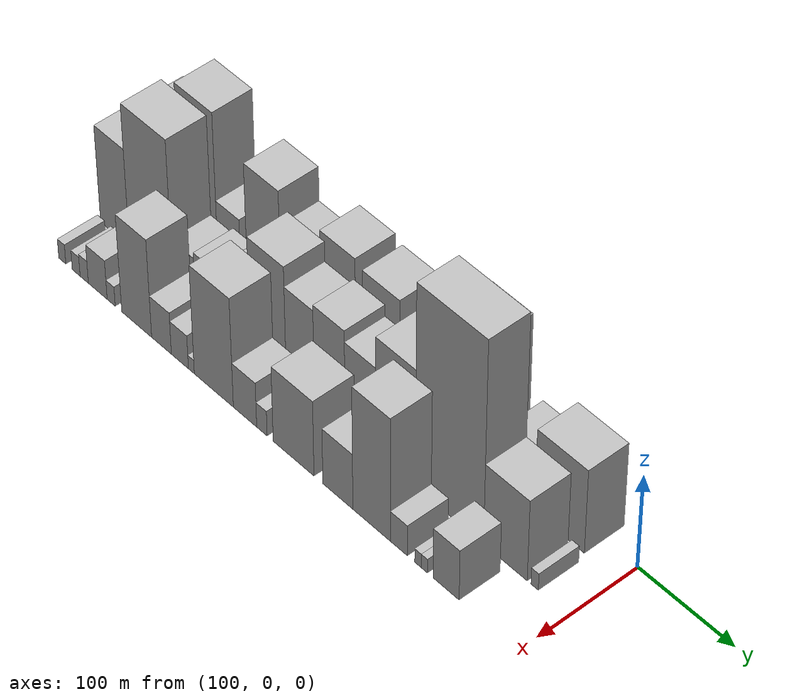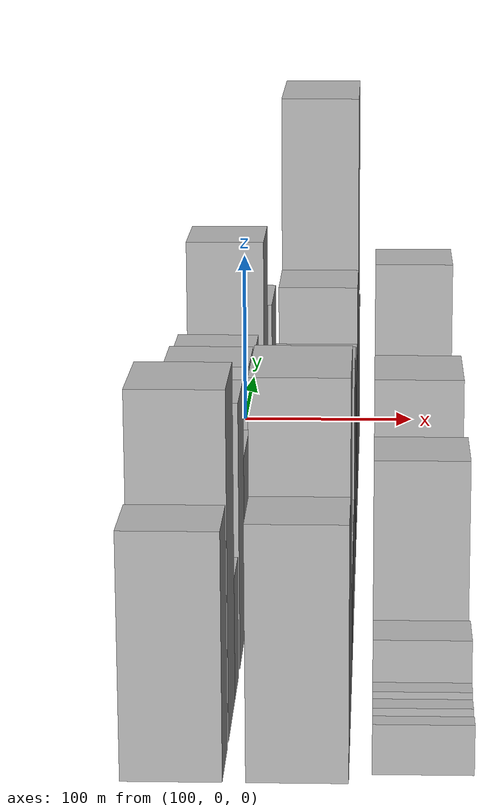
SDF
<sdf version="1.6">
 <world name="default">
  <model name="building_1">
   <static>1</static>
   <pose>100.0000 -519.1767 0 0.000000 0.000000 0.000000</pose>
   <link name="link">
    <pose>0 0 51.00 0 0 0</pose>
    <collision name="collision"><geometry><box><size>40.0000 33.6465 102.0000</size></box></geometry></collision>
    <visual name="visual">
     <cast_shadows>0</cast_shadows>
     <geometry><box><size>40.0000 33.6465 102.0000</size></box></geometry>
     <material>
      <script>
       <uri>model://HANNAS_wall/materials/scripts</uri>
       <uri>model://HANNAS_wall/materials/textures</uri>
       <name>vrc/HANNAS_wall</name>
      </script>
     </material>
    </visual>
   </link>
  </model>
  <model name="building_2">
   <static>1</static>
   <pose>100.0000 -473.9205 0 0.000000 0.000000 0.000000</pose>
   <link name="link">
    <pose>0 0 73.50 0 0 0</pose>
    <collision name="collision"><geometry><box><size>40.0000 44.8659 147.0000</size></box></geometry></collision>
    <visual name="visual">
     <cast_shadows>0</cast_shadows>
     <geometry><box><size>40.0000 44.8659 147.0000</size></box></geometry>
     <material>
      <script>
       <uri>model://HANNAS_wall/materials/scripts</uri>
       <uri>model://HANNAS_wall/materials/textures</uri>
       <name>vrc/HANNAS_wall</name>
      </script>
     </material>
    </visual>
   </link>
  </model>
  <model name="building_3">
   <static>1</static>
   <pose>100.0000 -437.5152 0 0.000000 0.000000 0.000000</pose>
   <link name="link">
    <pose>0 0 27.00 0 0 0</pose>
    <collision name="collision"><geometry><box><size>40.0000 27.9448 54.0000</size></box></geometry></collision>
    <visual name="visual">
     <cast_shadows>0</cast_shadows>
     <geometry><box><size>40.0000 27.9448 54.0000</size></box></geometry>
     <material>
      <script>
       <uri>model://HANNAS_wall/materials/scripts</uri>
       <uri>model://HANNAS_wall/materials/textures</uri>
       <name>vrc/HANNAS_wall</name>
      </script>
     </material>
    </visual>
   </link>
  </model>
  <model name="building_4">
   <static>1</static>
   <pose>100.0000 -395.3650 0 0.000000 0.000000 0.000000</pose>
   <link name="link">
    <pose>0 0 60.00 0 0 0</pose>
    <collision name="collision"><geometry><box><size>40.0000 40.3557 120.0000</size></box></geometry></collision>
    <visual name="visual">
     <cast_shadows>0</cast_shadows>
     <geometry><box><size>40.0000 40.3557 120.0000</size></box></geometry>
     <material>
      <script>
       <uri>model://HANNAS_wall/materials/scripts</uri>
       <uri>model://HANNAS_wall/materials/textures</uri>
       <name>vrc/HANNAS_wall</name>
      </script>
     </material>
    </visual>
   </link>
  </model>
  <model name="building_5">
   <static>1</static>
   <pose>100.0000 -351.5707 0 0.000000 0.000000 0.000000</pose>
   <link name="link">
    <pose>0 0 42.00 0 0 0</pose>
    <collision name="collision"><geometry><box><size>40.0000 47.2327 84.0000</size></box></geometry></collision>
    <visual name="visual">
     <cast_shadows>0</cast_shadows>
     <geometry><box><size>40.0000 47.2327 84.0000</size></box></geometry>
     <material>
      <script>
       <uri>model://HANNAS_wall/materials/scripts</uri>
       <uri>model://HANNAS_wall/materials/textures</uri>
       <name>vrc/HANNAS_wall</name>
      </script>
     </material>
    </visual>
   </link>
  </model>
  <model name="building_6">
   <static>1</static>
   <pose>100.0000 -307.8718 0 0.000000 0.000000 0.000000</pose>
   <link name="link">
    <pose>0 0 57.00 0 0 0</pose>
    <collision name="collision"><geometry><box><size>40.0000 40.1651 114.0000</size></box></geometry></collision>
    <visual name="visual">
     <cast_shadows>0</cast_shadows>
     <geometry><box><size>40.0000 40.1651 114.0000</size></box></geometry>
     <material>
      <script>
       <uri>model://HANNAS_wall/materials/scripts</uri>
       <uri>model://HANNAS_wall/materials/textures</uri>
       <name>vrc/HANNAS_wall</name>
      </script>
     </material>
    </visual>
   </link>
  </model>
  <model name="building_7">
   <static>1</static>
   <pose>100.0000 -258.7909 0 0.000000 0.000000 0.000000</pose>
   <link name="link">
    <pose>0 0 54.00 0 0 0</pose>
    <collision name="collision"><geometry><box><size>40.0000 41.9967 108.0000</size></box></geometry></collision>
    <visual name="visual">
     <cast_shadows>0</cast_shadows>
     <geometry><box><size>40.0000 41.9967 108.0000</size></box></geometry>
     <material>
      <script>
       <uri>model://HANNAS_wall/materials/scripts</uri>
       <uri>model://HANNAS_wall/materials/textures</uri>
       <name>vrc/HANNAS_wall</name>
      </script>
     </material>
    </visual>
   </link>
  </model>
  <model name="building_8">
   <static>1</static>
   <pose>100.0000 -221.3957 0 0.000000 0.000000 0.000000</pose>
   <link name="link">
    <pose>0 0 22.50 0 0 0</pose>
    <collision name="collision"><geometry><box><size>40.0000 26.7937 45.0000</size></box></geometry></collision>
    <visual name="visual">
     <cast_shadows>0</cast_shadows>
     <geometry><box><size>40.0000 26.7937 45.0000</size></box></geometry>
     <material>
      <script>
       <uri>model://HANNAS_wall/materials/scripts</uri>
       <uri>model://HANNAS_wall/materials/textures</uri>
       <name>vrc/HANNAS_wall</name>
      </script>
     </material>
    </visual>
   </link>
  </model>
  <model name="building_9">
   <static>1</static>
   <pose>100.0000 -204.3050 0 0.000000 0.000000 0.000000</pose>
   <link name="link">
    <pose>0 0 9.00 0 0 0</pose>
    <collision name="collision"><geometry><box><size>40.0000 7.3877 18.0000</size></box></geometry></collision>
    <visual name="visual">
     <cast_shadows>0</cast_shadows>
     <geometry><box><size>40.0000 7.3877 18.0000</size></box></geometry>
     <material>
      <script>
       <uri>model://HANNAS_wall/materials/scripts</uri>
       <uri>model://HANNAS_wall/materials/textures</uri>
       <name>vrc/HANNAS_wall</name>
      </script>
     </material>
    </visual>
   </link>
  </model>
  <model name="building_10">
   <static>1</static>
   <pose>100.0000 -191.5914 0 0.000000 0.000000 0.000000</pose>
   <link name="link">
    <pose>0 0 12.00 0 0 0</pose>
    <collision name="collision"><geometry><box><size>40.0000 10.0394 24.0000</size></box></geometry></collision>
    <visual name="visual">
     <cast_shadows>0</cast_shadows>
     <geometry><box><size>40.0000 10.0394 24.0000</size></box></geometry>
     <material>
      <script>
       <uri>model://HANNAS_wall/materials/scripts</uri>
       <uri>model://HANNAS_wall/materials/textures</uri>
       <name>vrc/HANNAS_wall</name>
      </script>
     </material>
    </visual>
   </link>
  </model>
  <model name="building_11">
   <static>1</static>
   <pose>100.0000 -160.2970 0 0.000000 0.000000 0.000000</pose>
   <link name="link">
    <pose>0 0 72.00 0 0 0</pose>
    <collision name="collision"><geometry><box><size>40.0000 44.5494 144.0000</size></box></geometry></collision>
    <visual name="visual">
     <cast_shadows>0</cast_shadows>
     <geometry><box><size>40.0000 44.5494 144.0000</size></box></geometry>
     <material>
      <script>
       <uri>model://HANNAS_wall/materials/scripts</uri>
       <uri>model://HANNAS_wall/materials/textures</uri>
       <name>vrc/HANNAS_wall</name>
      </script>
     </material>
    </visual>
   </link>
  </model>
  <model name="building_12">
   <static>1</static>
   <pose>100.0000 -128.2842 0 0.000000 0.000000 0.000000</pose>
   <link name="link">
    <pose>0 0 9.00 0 0 0</pose>
    <collision name="collision"><geometry><box><size>40.0000 7.4762 18.0000</size></box></geometry></collision>
    <visual name="visual">
     <cast_shadows>0</cast_shadows>
     <geometry><box><size>40.0000 7.4762 18.0000</size></box></geometry>
     <material>
      <script>
       <uri>model://HANNAS_wall/materials/scripts</uri>
       <uri>model://HANNAS_wall/materials/textures</uri>
       <name>vrc/HANNAS_wall</name>
      </script>
     </material>
    </visual>
   </link>
  </model>
  <model name="building_13">
   <static>1</static>
   <pose>100.0000 -106.5795 0 0.000000 0.000000 0.000000</pose>
   <link name="link">
    <pose>0 0 31.50 0 0 0</pose>
    <collision name="collision"><geometry><box><size>40.0000 35.9331 63.0000</size></box></geometry></collision>
    <visual name="visual">
     <cast_shadows>0</cast_shadows>
     <geometry><box><size>40.0000 35.9331 63.0000</size></box></geometry>
     <material>
      <script>
       <uri>model://HANNAS_wall/materials/scripts</uri>
       <uri>model://HANNAS_wall/materials/textures</uri>
       <name>vrc/HANNAS_wall</name>
      </script>
     </material>
    </visual>
   </link>
  </model>
  <model name="building_14">
   <static>1</static>
   <pose>100.0000 -61.9898 0 0.000000 0.000000 0.000000</pose>
   <link name="link">
    <pose>0 0 45.00 0 0 0</pose>
    <collision name="collision"><geometry><box><size>40.0000 53.2462 90.0000</size></box></geometry></collision>
    <visual name="visual">
     <cast_shadows>0</cast_shadows>
     <geometry><box><size>40.0000 53.2462 90.0000</size></box></geometry>
     <material>
      <script>
       <uri>model://HANNAS_wall/materials/scripts</uri>
       <uri>model://HANNAS_wall/materials/textures</uri>
       <name>vrc/HANNAS_wall</name>
      </script>
     </material>
    </visual>
   </link>
  </model>
  <model name="building_29">
   <static>1</static>
   <pose>149.0000 -518.1014 0 0.000000 0.000000 0.000000</pose>
   <link name="link">
    <pose>0 0 52.50 0 0 0</pose>
    <collision name="collision"><geometry><box><size>40.0000 35.7971 105.0000</size></box></geometry></collision>
    <visual name="visual">
     <cast_shadows>0</cast_shadows>
     <geometry><box><size>40.0000 35.7971 105.0000</size></box></geometry>
     <material>
      <script>
       <uri>model://HANNAS_wall/materials/scripts</uri>
       <uri>model://HANNAS_wall/materials/textures</uri>
       <name>vrc/HANNAS_wall</name>
      </script>
     </material>
    </visual>
   </link>
  </model>
  <model name="building_30">
   <static>1</static>
   <pose>149.0000 -473.4842 0 0.000000 0.000000 0.000000</pose>
   <link name="link">
    <pose>0 0 76.50 0 0 0</pose>
    <collision name="collision"><geometry><box><size>40.0000 53.4373 153.0000</size></box></geometry></collision>
    <visual name="visual">
     <cast_shadows>0</cast_shadows>
     <geometry><box><size>40.0000 53.4373 153.0000</size></box></geometry>
     <material>
      <script>
       <uri>model://HANNAS_wall/materials/scripts</uri>
       <uri>model://HANNAS_wall/materials/textures</uri>
       <name>vrc/HANNAS_wall</name>
      </script>
     </material>
    </visual>
   </link>
  </model>
  <model name="building_31">
   <static>1</static>
   <pose>149.0000 -433.1350 0 0.000000 0.000000 0.000000</pose>
   <link name="link">
    <pose>0 0 24.00 0 0 0</pose>
    <collision name="collision"><geometry><box><size>40.0000 27.2611 48.0000</size></box></geometry></collision>
    <visual name="visual">
     <cast_shadows>0</cast_shadows>
     <geometry><box><size>40.0000 27.2611 48.0000</size></box></geometry>
     <material>
      <script>
       <uri>model://HANNAS_wall/materials/scripts</uri>
       <uri>model://HANNAS_wall/materials/textures</uri>
       <name>vrc/HANNAS_wall</name>
      </script>
     </material>
    </visual>
   </link>
  </model>
  <model name="building_32">
   <static>1</static>
   <pose>149.0000 -405.4768 0 0.000000 0.000000 0.000000</pose>
   <link name="link">
    <pose>0 0 27.00 0 0 0</pose>
    <collision name="collision"><geometry><box><size>40.0000 28.0553 54.0000</size></box></geometry></collision>
    <visual name="visual">
     <cast_shadows>0</cast_shadows>
     <geometry><box><size>40.0000 28.0553 54.0000</size></box></geometry>
     <material>
      <script>
       <uri>model://HANNAS_wall/materials/scripts</uri>
       <uri>model://HANNAS_wall/materials/textures</uri>
       <name>vrc/HANNAS_wall</name>
      </script>
     </material>
    </visual>
   </link>
  </model>
  <model name="building_33">
   <static>1</static>
   <pose>149.0000 -375.0897 0 0.000000 0.000000 0.000000</pose>
   <link name="link">
    <pose>0 0 30.00 0 0 0</pose>
    <collision name="collision"><geometry><box><size>40.0000 32.7190 60.0000</size></box></geometry></collision>
    <visual name="visual">
     <cast_shadows>0</cast_shadows>
     <geometry><box><size>40.0000 32.7190 60.0000</size></box></geometry>
     <material>
      <script>
       <uri>model://HANNAS_wall/materials/scripts</uri>
       <uri>model://HANNAS_wall/materials/textures</uri>
       <name>vrc/HANNAS_wall</name>
      </script>
     </material>
    </visual>
   </link>
  </model>
  <model name="building_34">
   <static>1</static>
   <pose>149.0000 -332.7473 0 0.000000 0.000000 0.000000</pose>
   <link name="link">
    <pose>0 0 60.00 0 0 0</pose>
    <collision name="collision"><geometry><box><size>40.0000 41.9658 120.0000</size></box></geometry></collision>
    <visual name="visual">
     <cast_shadows>0</cast_shadows>
     <geometry><box><size>40.0000 41.9658 120.0000</size></box></geometry>
     <material>
      <script>
       <uri>model://HANNAS_wall/materials/scripts</uri>
       <uri>model://HANNAS_wall/materials/textures</uri>
       <name>vrc/HANNAS_wall</name>
      </script>
     </material>
    </visual>
   </link>
  </model>
  <model name="building_35">
   <static>1</static>
   <pose>149.0000 -295.4052 0 0.000000 0.000000 0.000000</pose>
   <link name="link">
    <pose>0 0 49.50 0 0 0</pose>
    <collision name="collision"><geometry><box><size>40.0000 32.7185 99.0000</size></box></geometry></collision>
    <visual name="visual">
     <cast_shadows>0</cast_shadows>
     <geometry><box><size>40.0000 32.7185 99.0000</size></box></geometry>
     <material>
      <script>
       <uri>model://HANNAS_wall/materials/scripts</uri>
       <uri>model://HANNAS_wall/materials/textures</uri>
       <name>vrc/HANNAS_wall</name>
      </script>
     </material>
    </visual>
   </link>
  </model>
  <model name="building_36">
   <static>1</static>
   <pose>149.0000 -261.4645 0 0.000000 0.000000 0.000000</pose>
   <link name="link">
    <pose>0 0 52.50 0 0 0</pose>
    <collision name="collision"><geometry><box><size>40.0000 35.1628 105.0000</size></box></geometry></collision>
    <visual name="visual">
     <cast_shadows>0</cast_shadows>
     <geometry><box><size>40.0000 35.1628 105.0000</size></box></geometry>
     <material>
      <script>
       <uri>model://HANNAS_wall/materials/scripts</uri>
       <uri>model://HANNAS_wall/materials/textures</uri>
       <name>vrc/HANNAS_wall</name>
      </script>
     </material>
    </visual>
   </link>
  </model>
  <model name="building_37">
   <static>1</static>
   <pose>149.0000 -226.4572 0 0.000000 0.000000 0.000000</pose>
   <link name="link">
    <pose>0 0 46.50 0 0 0</pose>
    <collision name="collision"><geometry><box><size>40.0000 34.8519 93.0000</size></box></geometry></collision>
    <visual name="visual">
     <cast_shadows>0</cast_shadows>
     <geometry><box><size>40.0000 34.8519 93.0000</size></box></geometry>
     <material>
      <script>
       <uri>model://HANNAS_wall/materials/scripts</uri>
       <uri>model://HANNAS_wall/materials/textures</uri>
       <name>vrc/HANNAS_wall</name>
      </script>
     </material>
    </visual>
   </link>
  </model>
  <model name="building_38">
   <static>1</static>
   <pose>149.0000 -187.0249 0 0.000000 0.000000 0.000000</pose>
   <link name="link">
    <pose>0 0 63.00 0 0 0</pose>
    <collision name="collision"><geometry><box><size>40.0000 44.0127 126.0000</size></box></geometry></collision>
    <visual name="visual">
     <cast_shadows>0</cast_shadows>
     <geometry><box><size>40.0000 44.0127 126.0000</size></box></geometry>
     <material>
      <script>
       <uri>model://HANNAS_wall/materials/scripts</uri>
       <uri>model://HANNAS_wall/materials/textures</uri>
       <name>vrc/HANNAS_wall</name>
      </script>
     </material>
    </visual>
   </link>
  </model>
  <model name="building_39">
   <static>1</static>
   <pose>149.0000 -127.7363 0 0.000000 0.000000 0.000000</pose>
   <link name="link">
    <pose>0 0 108.00 0 0 0</pose>
    <collision name="collision"><geometry><box><size>40.0000 74.5646 216.0000</size></box></geometry></collision>
    <visual name="visual">
     <cast_shadows>0</cast_shadows>
     <geometry><box><size>40.0000 74.5646 216.0000</size></box></geometry>
     <material>
      <script>
       <uri>model://HANNAS_wall/materials/scripts</uri>
       <uri>model://HANNAS_wall/materials/textures</uri>
       <name>vrc/HANNAS_wall</name>
      </script>
     </material>
    </visual>
   </link>
  </model>
  <model name="building_40">
   <static>1</static>
   <pose>149.0000 -67.0491 0 0.000000 0.000000 0.000000</pose>
   <link name="link">
    <pose>0 0 43.50 0 0 0</pose>
    <collision name="collision"><geometry><box><size>40.0000 46.8098 87.0000</size></box></geometry></collision>
    <visual name="visual">
     <cast_shadows>0</cast_shadows>
     <geometry><box><size>40.0000 46.8098 87.0000</size></box></geometry>
     <material>
      <script>
       <uri>model://HANNAS_wall/materials/scripts</uri>
       <uri>model://HANNAS_wall/materials/textures</uri>
       <name>vrc/HANNAS_wall</name>
      </script>
     </material>
    </visual>
   </link>
  </model>
  <model name="building_41">
   <static>1</static>
   <pose>149.0000 -35.7485 0 0.000000 0.000000 0.000000</pose>
   <link name="link">
    <pose>0 0 9.00 0 0 0</pose>
    <collision name="collision"><geometry><box><size>40.0000 7.7915 18.0000</size></box></geometry></collision>
    <visual name="visual">
     <cast_shadows>0</cast_shadows>
     <geometry><box><size>40.0000 7.7915 18.0000</size></box></geometry>
     <material>
      <script>
       <uri>model://HANNAS_wall/materials/scripts</uri>
       <uri>model://HANNAS_wall/materials/textures</uri>
       <name>vrc/HANNAS_wall</name>
      </script>
     </material>
    </visual>
   </link>
  </model>
  <model name="building_58">
   <static>1</static>
   <pose>198.0000 -522.6313 0 0.000000 0.000000 0.000000</pose>
   <link name="link">
    <pose>0 0 10.50 0 0 0</pose>
    <collision name="collision"><geometry><box><size>40.0000 8.7374 21.0000</size></box></geometry></collision>
    <visual name="visual">
     <cast_shadows>0</cast_shadows>
     <geometry><box><size>40.0000 8.7374 21.0000</size></box></geometry>
     <material>
      <script>
       <uri>model://HANNAS_wall/materials/scripts</uri>
       <uri>model://HANNAS_wall/materials/textures</uri>
       <name>vrc/HANNAS_wall</name>
      </script>
     </material>
    </visual>
   </link>
  </model>
  <model name="building_59">
   <static>1</static>
   <pose>198.0000 -505.3542 0 0.000000 0.000000 0.000000</pose>
   <link name="link">
    <pose>0 0 10.50 0 0 0</pose>
    <collision name="collision"><geometry><box><size>40.0000 9.8168 21.0000</size></box></geometry></collision>
    <visual name="visual">
     <cast_shadows>0</cast_shadows>
     <geometry><box><size>40.0000 9.8168 21.0000</size></box></geometry>
     <material>
      <script>
       <uri>model://HANNAS_wall/materials/scripts</uri>
       <uri>model://HANNAS_wall/materials/textures</uri>
       <name>vrc/HANNAS_wall</name>
      </script>
     </material>
    </visual>
   </link>
  </model>
  <model name="building_60">
   <static>1</static>
   <pose>198.0000 -495.3126 0 0.000000 0.000000 0.000000</pose>
   <link name="link">
    <pose>0 0 12.00 0 0 0</pose>
    <collision name="collision"><geometry><box><size>40.0000 10.2663 24.0000</size></box></geometry></collision>
    <visual name="visual">
     <cast_shadows>0</cast_shadows>
     <geometry><box><size>40.0000 10.2663 24.0000</size></box></geometry>
     <material>
      <script>
       <uri>model://HANNAS_wall/materials/scripts</uri>
       <uri>model://HANNAS_wall/materials/textures</uri>
       <name>vrc/HANNAS_wall</name>
      </script>
     </material>
    </visual>
   </link>
  </model>
  <model name="building_61">
   <static>1</static>
   <pose>198.0000 -478.6129 0 0.000000 0.000000 0.000000</pose>
   <link name="link">
    <pose>0 0 21.00 0 0 0</pose>
    <collision name="collision"><geometry><box><size>40.0000 23.1331 42.0000</size></box></geometry></collision>
    <visual name="visual">
     <cast_shadows>0</cast_shadows>
     <geometry><box><size>40.0000 23.1331 42.0000</size></box></geometry>
     <material>
      <script>
       <uri>model://HANNAS_wall/materials/scripts</uri>
       <uri>model://HANNAS_wall/materials/textures</uri>
       <name>vrc/HANNAS_wall</name>
      </script>
     </material>
    </visual>
   </link>
  </model>
  <model name="building_62">
   <static>1</static>
   <pose>198.0000 -462.0893 0 0.000000 0.000000 0.000000</pose>
   <link name="link">
    <pose>0 0 10.50 0 0 0</pose>
    <collision name="collision"><geometry><box><size>40.0000 9.9141 21.0000</size></box></geometry></collision>
    <visual name="visual">
     <cast_shadows>0</cast_shadows>
     <geometry><box><size>40.0000 9.9141 21.0000</size></box></geometry>
     <material>
      <script>
       <uri>model://HANNAS_wall/materials/scripts</uri>
       <uri>model://HANNAS_wall/materials/textures</uri>
       <name>vrc/HANNAS_wall</name>
      </script>
     </material>
    </visual>
   </link>
  </model>
  <model name="building_63">
   <static>1</static>
   <pose>198.0000 -430.9771 0 0.000000 0.000000 0.000000</pose>
   <link name="link">
    <pose>0 0 52.50 0 0 0</pose>
    <collision name="collision"><geometry><box><size>40.0000 36.3102 105.0000</size></box></geometry></collision>
    <visual name="visual">
     <cast_shadows>0</cast_shadows>
     <geometry><box><size>40.0000 36.3102 105.0000</size></box></geometry>
     <material>
      <script>
       <uri>model://HANNAS_wall/materials/scripts</uri>
       <uri>model://HANNAS_wall/materials/textures</uri>
       <name>vrc/HANNAS_wall</name>
      </script>
     </material>
    </visual>
   </link>
  </model>
  <model name="building_64">
   <static>1</static>
   <pose>198.0000 -400.9734 0 0.000000 0.000000 0.000000</pose>
   <link name="link">
    <pose>0 0 22.50 0 0 0</pose>
    <collision name="collision"><geometry><box><size>40.0000 23.6972 45.0000</size></box></geometry></collision>
    <visual name="visual">
     <cast_shadows>0</cast_shadows>
     <geometry><box><size>40.0000 23.6972 45.0000</size></box></geometry>
     <material>
      <script>
       <uri>model://HANNAS_wall/materials/scripts</uri>
       <uri>model://HANNAS_wall/materials/textures</uri>
       <name>vrc/HANNAS_wall</name>
      </script>
     </material>
    </visual>
   </link>
  </model>
  <model name="building_65">
   <static>1</static>
   <pose>198.0000 -378.9425 0 0.000000 0.000000 0.000000</pose>
   <link name="link">
    <pose>0 0 18.00 0 0 0</pose>
    <collision name="collision"><geometry><box><size>40.0000 20.3646 36.0000</size></box></geometry></collision>
    <visual name="visual">
     <cast_shadows>0</cast_shadows>
     <geometry><box><size>40.0000 20.3646 36.0000</size></box></geometry>
     <material>
      <script>
       <uri>model://HANNAS_wall/materials/scripts</uri>
       <uri>model://HANNAS_wall/materials/textures</uri>
       <name>vrc/HANNAS_wall</name>
      </script>
     </material>
    </visual>
   </link>
  </model>
  <model name="building_66">
   <static>1</static>
   <pose>198.0000 -365.2338 0 0.000000 0.000000 0.000000</pose>
   <link name="link">
    <pose>0 0 7.50 0 0 0</pose>
    <collision name="collision"><geometry><box><size>40.0000 7.0527 15.0000</size></box></geometry></collision>
    <visual name="visual">
     <cast_shadows>0</cast_shadows>
     <geometry><box><size>40.0000 7.0527 15.0000</size></box></geometry>
     <material>
      <script>
       <uri>model://HANNAS_wall/materials/scripts</uri>
       <uri>model://HANNAS_wall/materials/textures</uri>
       <name>vrc/HANNAS_wall</name>
      </script>
     </material>
    </visual>
   </link>
  </model>
  <model name="building_67">
   <static>1</static>
   <pose>198.0000 -338.7093 0 0.000000 0.000000 0.000000</pose>
   <link name="link">
    <pose>0 0 58.50 0 0 0</pose>
    <collision name="collision"><geometry><box><size>40.0000 45.9964 117.0000</size></box></geometry></collision>
    <visual name="visual">
     <cast_shadows>0</cast_shadows>
     <geometry><box><size>40.0000 45.9964 117.0000</size></box></geometry>
     <material>
      <script>
       <uri>model://HANNAS_wall/materials/scripts</uri>
       <uri>model://HANNAS_wall/materials/textures</uri>
       <name>vrc/HANNAS_wall</name>
      </script>
     </material>
    </visual>
   </link>
  </model>
  <model name="building_68">
   <static>1</static>
   <pose>198.0000 -302.1476 0 0.000000 0.000000 0.000000</pose>
   <link name="link">
    <pose>0 0 24.00 0 0 0</pose>
    <collision name="collision"><geometry><box><size>40.0000 27.1271 48.0000</size></box></geometry></collision>
    <visual name="visual">
     <cast_shadows>0</cast_shadows>
     <geometry><box><size>40.0000 27.1271 48.0000</size></box></geometry>
     <material>
      <script>
       <uri>model://HANNAS_wall/materials/scripts</uri>
       <uri>model://HANNAS_wall/materials/textures</uri>
       <name>vrc/HANNAS_wall</name>
      </script>
     </material>
    </visual>
   </link>
  </model>
  <model name="building_69">
   <static>1</static>
   <pose>198.0000 -282.5568 0 0.000000 0.000000 0.000000</pose>
   <link name="link">
    <pose>0 0 13.50 0 0 0</pose>
    <collision name="collision"><geometry><box><size>40.0000 12.0545 27.0000</size></box></geometry></collision>
    <visual name="visual">
     <cast_shadows>0</cast_shadows>
     <geometry><box><size>40.0000 12.0545 27.0000</size></box></geometry>
     <material>
      <script>
       <uri>model://HANNAS_wall/materials/scripts</uri>
       <uri>model://HANNAS_wall/materials/textures</uri>
       <name>vrc/HANNAS_wall</name>
      </script>
     </material>
    </visual>
   </link>
  </model>
  <model name="building_70">
   <static>1</static>
   <pose>198.0000 -246.2245 0 0.000000 0.000000 0.000000</pose>
   <link name="link">
    <pose>0 0 40.50 0 0 0</pose>
    <collision name="collision"><geometry><box><size>40.0000 46.6100 81.0000</size></box></geometry></collision>
    <visual name="visual">
     <cast_shadows>0</cast_shadows>
     <geometry><box><size>40.0000 46.6100 81.0000</size></box></geometry>
     <material>
      <script>
       <uri>model://HANNAS_wall/materials/scripts</uri>
       <uri>model://HANNAS_wall/materials/textures</uri>
       <name>vrc/HANNAS_wall</name>
      </script>
     </material>
    </visual>
   </link>
  </model>
  <model name="building_71">
   <static>1</static>
   <pose>198.0000 -196.0570 0 0.000000 0.000000 0.000000</pose>
   <link name="link">
    <pose>0 0 30.00 0 0 0</pose>
    <collision name="collision"><geometry><box><size>40.0000 33.7250 60.0000</size></box></geometry></collision>
    <visual name="visual">
     <cast_shadows>0</cast_shadows>
     <geometry><box><size>40.0000 33.7250 60.0000</size></box></geometry>
     <material>
      <script>
       <uri>model://HANNAS_wall/materials/scripts</uri>
       <uri>model://HANNAS_wall/materials/textures</uri>
       <name>vrc/HANNAS_wall</name>
      </script>
     </material>
    </visual>
   </link>
  </model>
  <model name="building_72">
   <static>1</static>
   <pose>198.0000 -158.4422 0 0.000000 0.000000 0.000000</pose>
   <link name="link">
    <pose>0 0 66.00 0 0 0</pose>
    <collision name="collision"><geometry><box><size>40.0000 41.5047 132.0000</size></box></geometry></collision>
    <visual name="visual">
     <cast_shadows>0</cast_shadows>
     <geometry><box><size>40.0000 41.5047 132.0000</size></box></geometry>
     <material>
      <script>
       <uri>model://HANNAS_wall/materials/scripts</uri>
       <uri>model://HANNAS_wall/materials/textures</uri>
       <name>vrc/HANNAS_wall</name>
      </script>
     </material>
    </visual>
   </link>
  </model>
  <model name="building_73">
   <static>1</static>
   <pose>198.0000 -128.3136 0 0.000000 0.000000 0.000000</pose>
   <link name="link">
    <pose>0 0 16.50 0 0 0</pose>
    <collision name="collision"><geometry><box><size>40.0000 18.7526 33.0000</size></box></geometry></collision>
    <visual name="visual">
     <cast_shadows>0</cast_shadows>
     <geometry><box><size>40.0000 18.7526 33.0000</size></box></geometry>
     <material>
      <script>
       <uri>model://HANNAS_wall/materials/scripts</uri>
       <uri>model://HANNAS_wall/materials/textures</uri>
       <name>vrc/HANNAS_wall</name>
      </script>
     </material>
    </visual>
   </link>
  </model>
  <model name="building_74">
   <static>1</static>
   <pose>198.0000 -107.3470 0 0.000000 0.000000 0.000000</pose>
   <link name="link">
    <pose>0 0 7.50 0 0 0</pose>
    <collision name="collision"><geometry><box><size>40.0000 7.1806 15.0000</size></box></geometry></collision>
    <visual name="visual">
     <cast_shadows>0</cast_shadows>
     <geometry><box><size>40.0000 7.1806 15.0000</size></box></geometry>
     <material>
      <script>
       <uri>model://HANNAS_wall/materials/scripts</uri>
       <uri>model://HANNAS_wall/materials/textures</uri>
       <name>vrc/HANNAS_wall</name>
      </script>
     </material>
    </visual>
   </link>
  </model>
  <model name="building_75">
   <static>1</static>
   <pose>198.0000 -100.4159 0 0.000000 0.000000 0.000000</pose>
   <link name="link">
    <pose>0 0 7.50 0 0 0</pose>
    <collision name="collision"><geometry><box><size>40.0000 6.6816 15.0000</size></box></geometry></collision>
    <visual name="visual">
     <cast_shadows>0</cast_shadows>
     <geometry><box><size>40.0000 6.6816 15.0000</size></box></geometry>
     <material>
      <script>
       <uri>model://HANNAS_wall/materials/scripts</uri>
       <uri>model://HANNAS_wall/materials/textures</uri>
       <name>vrc/HANNAS_wall</name>
      </script>
     </material>
    </visual>
   </link>
  </model>
  <model name="building_76">
   <static>1</static>
   <pose>198.0000 -77.0150 0 0.000000 0.000000 0.000000</pose>
   <link name="link">
    <pose>0 0 27.00 0 0 0</pose>
    <collision name="collision"><geometry><box><size>40.0000 28.1201 54.0000</size></box></geometry></collision>
    <visual name="visual">
     <cast_shadows>0</cast_shadows>
     <geometry><box><size>40.0000 28.1201 54.0000</size></box></geometry>
     <material>
      <script>
       <uri>model://HANNAS_wall/materials/scripts</uri>
       <uri>model://HANNAS_wall/materials/textures</uri>
       <name>vrc/HANNAS_wall</name>
      </script>
     </material>
    </visual>
   </link>
  </model>
 </world>
</sdf>
